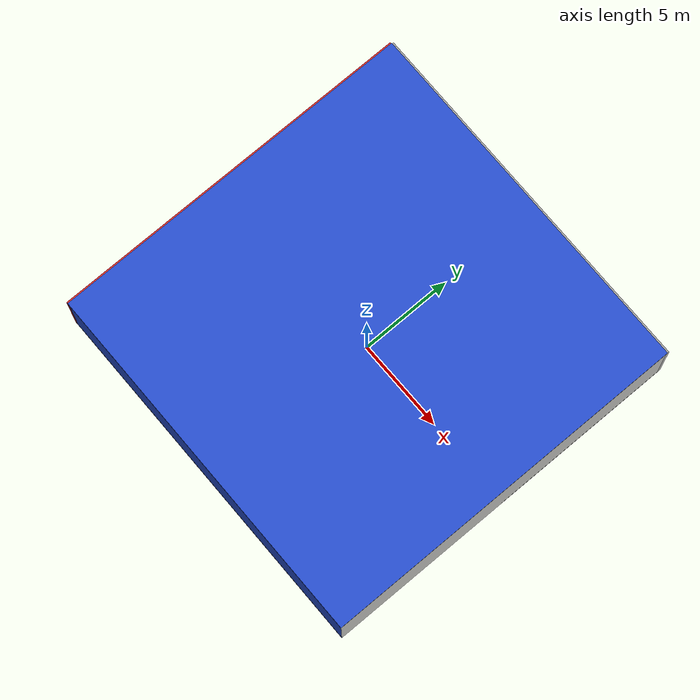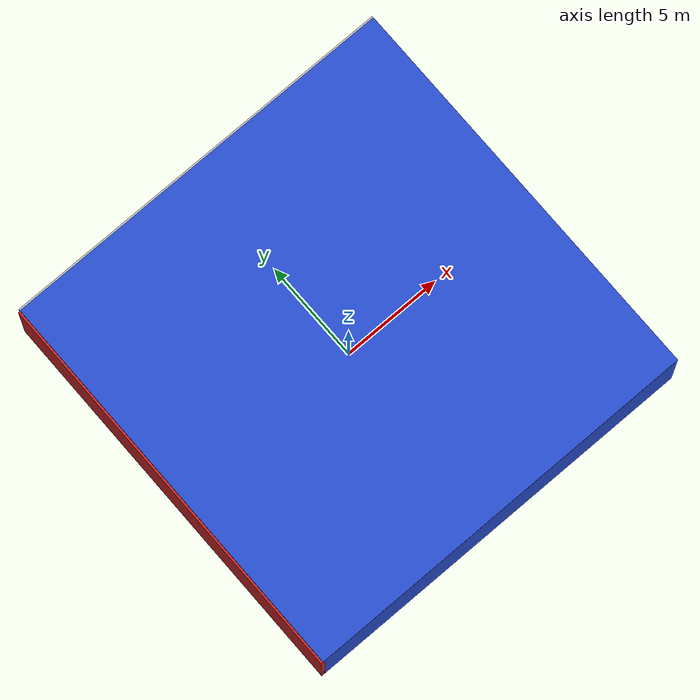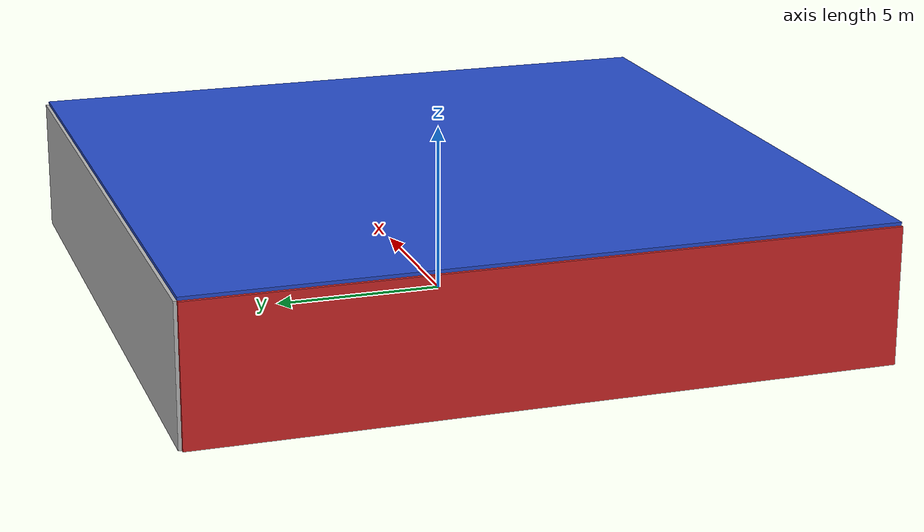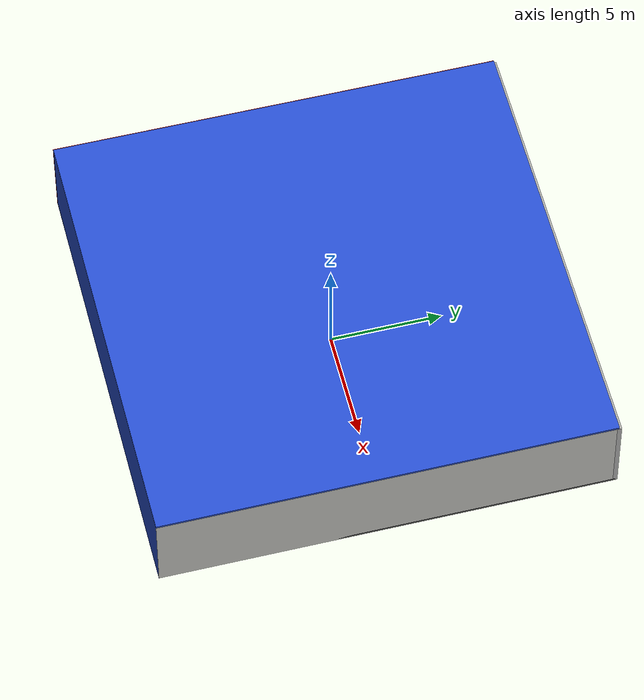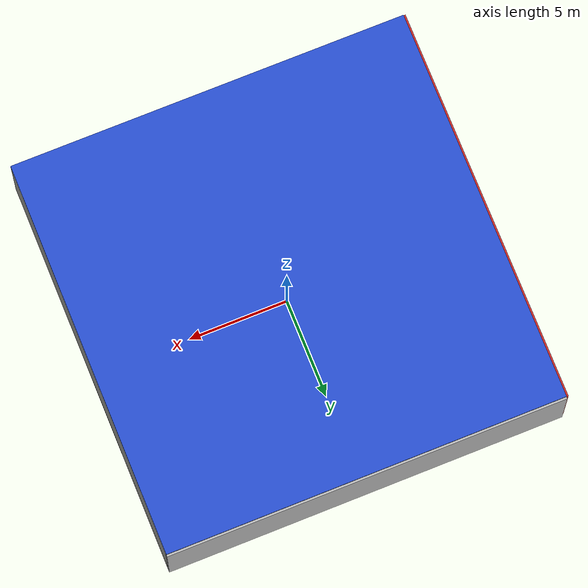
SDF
<sdf version="1.4">
 <world name="default">
  <physics type="ode">
   <max_step_size>0.001</max_step_size>
   <real_time_factor>1</real_time_factor>
   <real_time_update_rate>1000</real_time_update_rate>
   <gravity>0 0 -9.8</gravity>
  </physics>
  <scene><ambient>0.4 0.4 0.4 1</ambient><background>0.7 0.7 0.7 1</background><shadows>1</shadows></scene>
  <model name="Surrounding">
   <static>1</static>
   <link name="Ceiling">
    <collision name="Ceiling_Collision"><geometry><box><size>20 20 0.1</size></box></geometry></collision>
    <visual name="Ceiling_Visual">
     <geometry><box><size>20 20 0.1</size></box></geometry>
     <material>
      <script><uri>file://media/materials/scripts/gazebo.material</uri><name>Gazebo/Blue</name></script>
     </material>
    </visual>
    <pose>0 0 4.05 0 0 0</pose>
   </link>
   <link name="Wall_South">
    <collision name="Wall_South_Collision">
     <geometry><box><size>20 0 4</size></box></geometry>
     <pose>0 0 2 0 -0 0</pose>
    </collision>
    <visual name="Wall_South_Visual">
     <pose>0 0 2 0 -0 0</pose>
     <geometry><box><size>20 0 4</size></box></geometry>
     <material>
      <script><uri>file://media/materials/scripts/gazebo.material</uri><name>Gazebo/BlueLaser</name></script>
     </material>
    </visual>
    <velocity_decay><linear>0</linear><angular>0</angular></velocity_decay>
    <pose>0 -10 0 0 -0 0</pose>
   </link>
   <link name="Wall_East">
    <collision name="Wall_21_Collision">
     <geometry><box><size>20 0 4</size></box></geometry>
     <pose>0 0 2 0 -0 0</pose>
    </collision>
    <visual name="Wall_21_Visual">
     <pose>0 0 2 0 -0 0</pose>
     <geometry><box><size>20 0 4</size></box></geometry>
     <material>
      <script><uri>file://media/materials/scripts/gazebo.material</uri><name>Gazebo/CeilingTiled</name></script>
     </material>
    </visual>
    <velocity_decay><linear>0</linear><angular>0</angular></velocity_decay>
    <pose>10 0 0 0 -0 1.5708</pose>
   </link>
   <link name="Wall_North">
    <collision name="Wall_22_Collision">
     <geometry><box><size>20 0.2 4</size></box></geometry>
     <pose>0 0 2 0 -0 0</pose>
    </collision>
    <visual name="Wall_22_Visual">
     <pose>0 0 2 0 -0 0</pose>
     <geometry><box><size>20 0.2 4</size></box></geometry>
     <material>
      <script><uri>file://media/materials/scripts/gazebo.material</uri><name>Gazebo/JointAnchor</name></script>
     </material>
    </visual>
    <velocity_decay><linear>0</linear><angular>0</angular></velocity_decay>
    <pose>0 10 0 0 -0 0</pose>
   </link>
   <link name="Wall_West">
    <collision name="Wall_23_Collision">
     <geometry><box><size>20 0.2 4</size></box></geometry>
     <pose>0 0 2 0 -0 0</pose>
    </collision>
    <visual name="Wall_23_Visual">
     <pose>0 0 2 0 -0 0</pose>
     <geometry><box><size>20 0.2 4</size></box></geometry>
     <material>
      <script><uri>file://media/materials/scripts/gazebo.material</uri><name>Gazebo/Red</name></script>
     </material>
    </visual>
    <velocity_decay><linear>0</linear><angular>0</angular></velocity_decay>
    <pose>-10 0 0 0 0 -1.5708</pose>
   </link>
   <link name="Ground_link">
    <collision name="collision">
     <pose>0 0 .05 0 -0 0</pose>
     <geometry><box><size>20 20 0.1</size></box></geometry>
    </collision>
    <visual name="visual">
     <pose>0 0 .05 0 -0 0</pose>
     <geometry><box><size>20 20 0.1</size></box></geometry>
     <material>
      <script><uri>file://media/materials/scripts/gazebo.material</uri><name>Gazebo/DarkGrey</name></script>
     </material>
    </visual>
   </link>
   <static>1</static>
  </model>
  <spherical_coordinates>
   <surface_model>EARTH_WGS84</surface_model>
   <latitude_deg>0</latitude_deg>
   <longitude_deg>0</longitude_deg>
   <elevation>0</elevation>
   <heading_deg>0</heading_deg>
  </spherical_coordinates>
  <light name="lightball_0" type="diffuse">
   <diffuse>0.8 0.8 0.8 1</diffuse>
   <specular>0.2 0.2 0.2 1</specular>
   <attenuation>
    <range>100</range>
    <constant>0.7</constant>
    <linear>0.01</linear>
    <quadratic>0.001</quadratic>
   </attenuation>
   <direction>-0.5 0.1 -0.9</direction>
   <pose>8.88176718248 -6.82415456193 0.68972764924 0 0 0</pose>
  </light>
  <light name="lightball_1" type="diffuse">
   <diffuse>0.8 0.8 0.8 1</diffuse>
   <specular>0.2 0.2 0.2 1</specular>
   <attenuation>
    <range>100</range>
    <constant>0.7</constant>
    <linear>0.01</linear>
    <quadratic>0.001</quadratic>
   </attenuation>
   <direction>-0.5 0.1 -0.9</direction>
   <pose>5.47499773584 6.86489167414 1.25608468681 0 0 0</pose>
  </light>
  <light name="lightball_2" type="diffuse">
   <diffuse>0.8 0.8 0.8 1</diffuse>
   <specular>0.2 0.2 0.2 1</specular>
   <attenuation>
    <range>100</range>
    <constant>0.7</constant>
    <linear>0.01</linear>
    <quadratic>0.001</quadratic>
   </attenuation>
   <direction>-0.5 0.1 -0.9</direction>
   <pose>-3.28840066237 8.79262503145 2.46733683761 0 0 0</pose>
  </light>
  <light name="lightball_3" type="diffuse">
   <diffuse>0.8 0.8 0.8 1</diffuse>
   <specular>0.2 0.2 0.2 1</specular>
   <attenuation>
    <range>100</range>
    <constant>0.7</constant>
    <linear>0.01</linear>
    <quadratic>0.001</quadratic>
   </attenuation>
   <direction>-0.5 0.1 -0.9</direction>
   <pose>3.08369394032 6.34350168785 1.35519774721 0 0 0</pose>
  </light>
  <include><uri>model://table</uri><pose>-1.79765004612 -1.82438250624 0 0 0 0.462052534824</pose></include>
  <include>
   <uri>model://textured_shapes</uri>
   <pose>0.331605475498 -0.399042227654 0 0 0 1.23485510719</pose>
  </include>
  <include>
   <uri>model://robocup_3Dsim_goal</uri>
   <pose>0.729854842717 4.66662248218 0 0 0 1.80243444735</pose>
  </include>
  <include><uri>model://cabinet</uri><pose>4.46523957185 -7.41129290834 0 0 0 2.57931982428</pose></include>
  <include>
   <uri>model://construction_cone</uri>
   <pose>8.27431238717 -1.44331069124 0 0 0 1.10684385242</pose>
  </include>
  <include><uri>model://cabinet</uri><pose>7.98513280715 5.34911010331 0 0 0 2.1853930261</pose></include>
 </world>
</sdf>

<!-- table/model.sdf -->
<sdf version="1.5">
  <model name="table">
    <static>true</static>
    <link name="link">
      <collision name="surface">
        <pose>0 0 1.0 0 0 0</pose>
        <geometry>
          <box>
            <size>1.5 0.8 0.03</size>
          </box>
        </geometry>
        <surface>
          <friction>
            <ode>
              <mu>0.6</mu>
              <mu2>0.6</mu2>
            </ode>
          </friction>
        </surface>
      </collision>
      <visual name="visual1">
        <pose>0 0 1.0 0 0 0</pose>
        <geometry>
          <box>
            <size>1.5 0.8 0.03</size>
          </box>
        </geometry>
        <material>
          <script>
            <uri>model://media/materials/scripts/gazebo.material</uri>
            <name>Gazebo/Wood</name>
          </script>
        </material>
      </visual>
      <collision name="front_left_leg">
        <pose>0.68 0.38 0.5 0 0 0</pose>
        <geometry>
          <cylinder>
            <radius>0.02</radius>
            <length>1.0</length>
          </cylinder>
        </geometry>
      </collision>
      <visual name="front_left_leg">
        <pose>0.68 0.38 0.5 0 0 0</pose>
        <geometry>
          <cylinder>
            <radius>0.02</radius>
            <length>1.0</length>
          </cylinder>
        </geometry>
        <material>
          <script>
            <uri>model://media/materials/scripts/gazebo.material</uri>
            <name>Gazebo/Grey</name>
          </script>
        </material>
      </visual>
      <collision name="front_right_leg">
        <pose>0.68 -0.38 0.5 0 0 0</pose>
        <geometry>
          <cylinder>
            <radius>0.02</radius>
            <length>1.0</length>
          </cylinder>
        </geometry>
      </collision>
      <visual name="front_right_leg">
        <pose>0.68 -0.38 0.5 0 0 0</pose>
        <geometry>
          <cylinder>
            <radius>0.02</radius>
            <length>1.0</length>
          </cylinder>
        </geometry>
        <material>
          <script>
            <uri>model://media/materials/scripts/gazebo.material</uri>
            <name>Gazebo/Grey</name>
          </script>
        </material>
      </visual>
      <collision name="back_right_leg">
        <pose>-0.68 -0.38 0.5 0 0 0</pose>
        <geometry>
          <cylinder>
            <radius>0.02</radius>
            <length>1.0</length>
          </cylinder>
        </geometry>
      </collision>
      <visual name="back_right_leg">
        <pose>-0.68 -0.38 0.5 0 0 0</pose>
        <geometry>
          <cylinder>
            <radius>0.02</radius>
            <length>1.0</length>
          </cylinder>
        </geometry>
        <material>
          <script>
            <uri>model://media/materials/scripts/gazebo.material</uri>
            <name>Gazebo/Grey</name>
          </script>
        </material>
      </visual>
      <collision name="back_left_leg">
        <pose>-0.68 0.38 0.5 0 0 0</pose>
        <geometry>
          <cylinder>
            <radius>0.02</radius>
            <length>1.0</length>
          </cylinder>
        </geometry>
      </collision>
      <visual name="back_left_leg">
        <pose>-0.68 0.38 0.5 0 0 0</pose>
        <geometry>
          <cylinder>
            <radius>0.02</radius>
            <length>1.0</length>
          </cylinder>
        </geometry>
        <material>
          <script>
            <uri>model://media/materials/scripts/gazebo.material</uri>
            <name>Gazebo/Grey</name>
          </script>
        </material>
      </visual>
    </link>
  </model>
</sdf>

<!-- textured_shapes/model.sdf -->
<sdf version="1.6">
  <model name="textured_shapes">
    <pose>0 0 0.5 0 0 0</pose>
    <link name="box">
      <pose>0 -1.5 0 0 0 0</pose>
      <collision name="collision">
        <geometry>
          <box>
            <size>1 1 1</size>
          </box>
        </geometry>
      </collision>
      <visual name="visual">
        <geometry>
          <box>
            <size>1 1 1</size>
          </box>
        </geometry>
        <material>
          <script>
            <uri>model://../model_source/models/textured_shapes/materials/scripts</uri>
            <uri>model://../model_source/models/textured_shapes/materials/textures</uri>
            <name>TexturedShape/Squares</name>
          </script>
        </material>
      </visual>
    </link>
    <link name="sphere">
      <collision name="collision">
        <geometry>
          <sphere>
            <radius>0.5</radius>
          </sphere>
        </geometry>
      </collision>
      <visual name="visual">
        <geometry>
          <sphere>
            <radius>0.5</radius>
          </sphere>
        </geometry>
        <material>
          <script>
            <uri>model://../model_source/models/textured_shapes/materials/scripts</uri>
            <uri>model://../model_source/models/textured_shapes/materials/textures</uri>
            <name>TexturedShape/Squares</name>
          </script>
        </material>
      </visual>
    </link>
    <link name="cylinder">
      <pose>0 1.5 0 0 0 0</pose>
      <collision name="collision">
        <geometry>
          <cylinder>
            <radius>0.5</radius>
            <length>1</length>
          </cylinder>
        </geometry>
      </collision>
      <visual name="visual">
        <geometry>
          <cylinder>
            <radius>0.5</radius>
            <length>1</length>
          </cylinder>
        </geometry>
        <material>
          <script>
            <uri>model://../model_source/models/textured_shapes/materials/scripts</uri>
            <uri>model://../model_source/models/textured_shapes/materials/textures</uri>
            <name>TexturedShape/Squares</name>
          </script>
        </material>
      </visual>
    </link>
  </model>
</sdf>

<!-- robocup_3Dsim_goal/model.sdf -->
<sdf version="1.5">
  <model name="robocup_3d_goal">
    <static>true</static>
    <link name="left_post">
      <pose>0 1.05 0.45 0 0 0</pose>
      <collision name="collision">
        <geometry>
          <cylinder>
            <radius>0.05</radius>
            <length>0.9</length>
          </cylinder>
        </geometry>
      </collision>
      <visual name="visual">
        <geometry>
          <cylinder>
            <radius>0.05</radius>
            <length>0.9</length>
          </cylinder>
        </geometry>
        <material>
          <script>
            <uri>file://media/materials/scripts/gazebo.material</uri>
            <name>Gazebo/ZincYellow</name>
          </script>
        </material>
      </visual>
    </link>
    <link name="left_support_horiz_lower">
      <pose>0.30 1.05 0.01 0 0 0</pose>
      <collision name="collision">
        <geometry>
          <box>
            <size>0.50 0.02 0.02</size>
          </box>
        </geometry>
      </collision>
      <visual name="visual">
        <geometry>
          <box>
            <size>0.50 0.02 0.02</size>
          </box>
        </geometry>
        <material>
          <script>
            <uri>file://media/materials/scripts/gazebo.material</uri>
            <name>Gazebo/White</name>
          </script>
        </material>
      </visual>
    </link>
    <link name="left_support_horiz_upper">
      <pose>0.30 1.05 0.79 0 0 0</pose>
      <collision name="collision">
        <geometry>
          <box>
            <size>0.50 0.02 0.02</size>
          </box>
        </geometry>
      </collision>
      <visual name="visual">
        <geometry>
          <box>
            <size>0.50 0.02 0.02</size>
          </box>
        </geometry>
        <material>
          <script>
            <uri>file://media/materials/scripts/gazebo.material</uri>
            <name>Gazebo/White</name>
          </script>
        </material>
      </visual>
    </link>
    <link name="left_support_vertical">
      <pose>0.56 1.05 0.4 0 1.5708 0</pose>
      <collision name="collision">
        <geometry>
          <box>
            <size>0.80 0.02 0.02</size>
          </box>
        </geometry>
      </collision>
      <visual name="visual">
        <geometry>
          <box>
            <size>0.80 0.02 0.02</size>
          </box>
        </geometry>
        <material>
          <script>
            <uri>file://media/materials/scripts/gazebo.material</uri>
            <name>Gazebo/White</name>
          </script>
        </material>
      </visual>
    </link>
    <link name="right_support_horiz_lower">
      <pose>0.30 -1.05 0.01 0 0 0</pose>
      <collision name="collision">
        <geometry>
          <box>
            <size>0.50 0.02 0.02</size>
          </box>
        </geometry>
      </collision>
      <visual name="visual">
        <geometry>
          <box>
            <size>0.50 0.02 0.02</size>
          </box>
        </geometry>
        <material>
          <script>
            <uri>file://media/materials/scripts/gazebo.material</uri>
            <name>Gazebo/White</name>
          </script>
        </material>
      </visual>
    </link>
    <link name="right_support_horiz_upper">
      <pose>0.30 -1.05 0.79 0 0 0</pose>
      <collision name="collision">
        <geometry>
          <box>
            <size>0.50 0.02 0.02</size>
          </box>
        </geometry>
      </collision>
      <visual name="visual">
        <geometry>
          <box>
            <size>0.50 0.02 0.02</size>
          </box>
        </geometry>
        <material>
          <script>
            <uri>file://media/materials/scripts/gazebo.material</uri>
            <name>Gazebo/White</name>
          </script>
        </material>
      </visual>
    </link>
    <link name="right_support_vertical">
      <pose>0.56 -1.05 0.4 0 1.5708 0</pose>
      <collision name="collision">
        <geometry>
          <box>
            <size>0.80 0.02 0.02</size>
          </box>
        </geometry>
      </collision>
      <visual name="visual">
        <geometry>
          <box>
            <size>0.80 0.02 0.02</size>
          </box>
        </geometry>
        <material>
          <script>
            <uri>file://media/materials/scripts/gazebo.material</uri>
            <name>Gazebo/White</name>
          </script>
        </material>
      </visual>
    </link>
    <link name="center_support_horiz_lower">
      <pose>0.56 0 0.01 0 1.5708 0</pose>
      <collision name="collision">
        <geometry>
          <box>
            <size>0.02 2.08 0.02</size>
          </box>
        </geometry>
      </collision>
      <visual name="visual">
        <geometry>
          <box>
            <size>0.02 2.08 0.02</size>
          </box>
        </geometry>
        <material>
          <script>
            <uri>file://media/materials/scripts/gazebo.material</uri>
            <name>Gazebo/White</name>
          </script>
        </material>
      </visual>
    </link>
    <link name="center_support_horiz_upper">
      <pose>0.56 0 0.79 0 1.5708 0</pose>
      <collision name="collision">
        <geometry>
          <box>
            <size>0.02 2.08 0.02</size>
          </box>
        </geometry>
      </collision>
      <visual name="visual">
        <geometry>
          <box>
            <size>0.02 2.08 0.02</size>
          </box>
        </geometry>
        <material>
          <script>
            <uri>file://media/materials/scripts/gazebo.material</uri>
            <name>Gazebo/White</name>
          </script>
        </material>
      </visual>
    </link>
    <link name="right_post">
      <pose>0 -1.05 0.45 0 0 0</pose>
      <collision name="collision">
        <geometry>
          <cylinder>
            <radius>0.05</radius>
            <length>0.9</length>
          </cylinder>
        </geometry>
      </collision>
      <visual name="visual">
        <geometry>
          <cylinder>
            <radius>0.05</radius>
            <length>0.9</length>
          </cylinder>
        </geometry>
        <material>
          <script>
            <uri>file://media/materials/scripts/gazebo.material</uri>
            <name>Gazebo/ZincYellow</name>
          </script>
        </material>
      </visual>
    </link>
    <link name="crossbar">
      <pose>0 0 0.85 1.57 1.57 0</pose>
      <collision name="collision">
        <geometry>
          <cylinder>
            <radius>0.05</radius>
            <length>2.0</length>
          </cylinder>
        </geometry>
      </collision>
      <visual name="visual">
        <geometry>
          <cylinder>
            <radius>0.05</radius>
            <length>2.0</length>
          </cylinder>
        </geometry>
        <material>
          <script>
            <uri>file://media/materials/scripts/gazebo.material</uri>
            <name>Gazebo/ZincYellow</name>
          </script>
        </material>
      </visual>
    </link>
    <link name="center_net">
      <pose>0.56 0 0.40 0 0 0</pose>
      <collision name="collision">
        <geometry>
          <box>
            <size>0.01 2.1 0.80</size>
          </box>
        </geometry>
      </collision>
      <visual name="visual">
        <geometry>
          <box>
            <size>0.01 2.1 0.80</size>
          </box>
        </geometry>
        <material>
          <script>
            <uri>model://../model_source/models/robocup09_spl_field/materials/scripts/</uri>
            <uri>model://../model_source/models/robocup09_spl_field/materials/textures/</uri>
            <name>RoboCup/Net</name>
          </script>
        </material>
      </visual>
    </link>
    <link name="left_net">
      <pose>0.30 1.05 0.40 0 0 0</pose>
      <collision name="collision">
        <geometry>
          <box>
            <size>0.50 0.01 0.76</size>
          </box>
        </geometry>
      </collision>
      <visual name="visual">
        <geometry>
          <box>
            <size>0.50 0.01 0.76</size>
          </box>
        </geometry>
        <material>
          <script>
            <uri>model://../model_source/models/robocup09_spl_field/materials/scripts/</uri>
            <uri>model://../model_source/models/robocup09_spl_field/materials/textures/</uri>
            <name>RoboCup/Net</name>
          </script>
        </material>
      </visual>
    </link>
    <link name="right_net">
      <pose>0.30 -1.05 0.40 0 0 0</pose>
      <collision name="collision">
        <geometry>
          <box>
            <size>0.50 0.01 0.76</size>
          </box>
        </geometry>
      </collision>
      <visual name="visual">
        <geometry>
          <box>
            <size>0.50 0.01 0.76</size>
          </box>
        </geometry>
        <material>
          <script>
            <uri>model://../model_source/models/robocup09_spl_field/materials/scripts/</uri>
            <uri>model://../model_source/models/robocup09_spl_field/materials/textures/</uri>
            <name>RoboCup/Net</name>
          </script>
        </material>
      </visual>
    </link>
  </model>
</sdf>

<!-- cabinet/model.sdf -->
<sdf version="1.5">
  <model name="cabinet">
    <static>true</static>
    <link name="cabinet_bottom_plate">
      <inertial>
        <pose>0 0 -1 0 0 0</pose>
        <inertia>
          <ixx>2.050000</ixx>
          <ixy>0</ixy>
          <ixz>0</ixz>
          <iyy>2.050000</iyy>
          <iyz>0</iyz>
          <izz>2.050000</izz>
        </inertia>
        <mass>25.000000</mass>
      </inertial>
      <collision name="cabinet_bottom_plate_geom">
        <pose>0 0 0.010000 0 0 0</pose>
        <geometry>
          <box>
            <size>0.450000 0.450000 0.020000</size>
          </box>
        </geometry>
      </collision>
      <visual name="cabinet_bottom_plate_geom_visual">
        <pose>0 0 0.010000 0 0 0</pose>
        <geometry>
          <box>
            <size>0.450000 0.450000 0.020000</size>
          </box>
        </geometry>
        <material>
          <script>
            <uri>model://media/materials/scripts/gazebo.material</uri>
            <name>Gazebo/Wood</name>
          </script>
        </material>
      </visual>
      <collision name="cabinet_bottom_plate_geom_cabinet_back_plate">
        <pose>0.235000 0 0.510000 0 0 0</pose>
        <geometry>
          <box>
            <size>0.020000 0.450000 1.020000</size>
          </box>
        </geometry>
      </collision>
      <visual name="cabinet_bottom_plate_geom_cabinet_back_plate_visual">
        <pose>0.235000 0 0.510000 0 0 0</pose>
        <geometry>
          <box>
            <size>0.020000 0.450000 1.020000</size>
          </box>
        </geometry>
        <material>
          <script>
            <uri>model://media/materials/scripts/gazebo.material</uri>
            <name>Gazebo/Wood</name>
          </script>
        </material>
      </visual>
      <collision name="cabinet_bottom_plate_geom_cabinet_left_plate">
        <pose>0 0.235000 0.510000 0 0 0</pose>
        <geometry>
          <box>
            <size>0.450000 0.020000 1.020000</size>
          </box>
        </geometry>
      </collision>
      <visual name="cabinet_bottom_plate_geom_cabinet_left_plate_visual">
        <pose>0 0.235000 0.510000 0 0 0</pose>
        <geometry>
          <box>
            <size>0.450000 0.020000 1.020000</size>
          </box>
        </geometry>
        <material>
          <script>
            <uri>model://media/materials/scripts/gazebo.material</uri>
            <name>Gazebo/Wood</name>
          </script>
        </material>
      </visual>
      <collision name="cabinet_bottom_plate_geom_cabinet_middle_plate">
        <pose>0 0 0.510000 0 0 0</pose>
        <geometry>
          <box>
            <size>0.450000 0.450000 0.020000</size>
          </box>
        </geometry>
      </collision>
      <visual name="cabinet_bottom_plate_geom_cabinet_middle_plate_visual">
        <pose>0 0 0.510000 0 0 0</pose>
        <geometry>
          <box>
            <size>0.450000 0.450000 0.020000</size>
          </box>
        </geometry>
        <material>
          <script>
            <uri>model://media/materials/scripts/gazebo.material</uri>
            <name>Gazebo/Wood</name>
          </script>
        </material>
      </visual>
      <collision name="cabinet_bottom_plate_geom_cabinet_right_plate">
        <pose>0 -0.235000 0.510000 0 0 0</pose>
        <geometry>
          <box>
            <size>0.450000 0.020000 1.020000</size>
          </box>
        </geometry>
      </collision>
      <visual name="cabinet_bottom_plate_geom_cabinet_right_plate_visual">
        <pose>0 -0.235000 0.510000 0 0 0</pose>
        <geometry>
          <box>
            <size>0.450000 0.020000 1.020000</size>
          </box>
        </geometry>
        <material>
          <script>
            <uri>model://media/materials/scripts/gazebo.material</uri>
            <name>Gazebo/Wood</name>
          </script>
        </material>
      </visual>
      <collision name="cabinet_bottom_plate_geom_cabinet_top_plate">
        <pose>0 0 1.010000 0 0 0</pose>
        <geometry>
          <box>
            <size>0.450000 0.450000 0.020000</size>
          </box>
        </geometry>
      </collision>
      <visual name="cabinet_bottom_plate_geom_cabinet_top_plate_visual">
        <pose>0 0 1.010000 0 0 0</pose>
        <geometry>
          <box>
            <size>0.450000 0.450000 0.020000</size>
          </box>
        </geometry>
        <material>
          <script>
            <uri>model://media/materials/scripts/gazebo.material</uri>
            <name>Gazebo/Wood</name>
          </script>
        </material>
      </visual>
    </link>
  </model>
</sdf>

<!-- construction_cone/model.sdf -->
<sdf version="1.5">
  <model name="Construction Cone">
    <link name="link">
      <collision name="collision">
        <geometry>
          <mesh>
            <scale>10 10 10</scale>
            <uri>file://isr-testbed/construction_cone/meshes/construction_cone.dae</uri>
          </mesh>
        </geometry>
      </collision>
      <visual name="visual">
        <geometry>
          <mesh>
            <scale>10 10 10</scale>
            <uri>file://isr-testbed/construction_cone/meshes/construction_cone.dae</uri>
          </mesh>
        </geometry>
      </visual>
    </link>
  </model>
</sdf>
